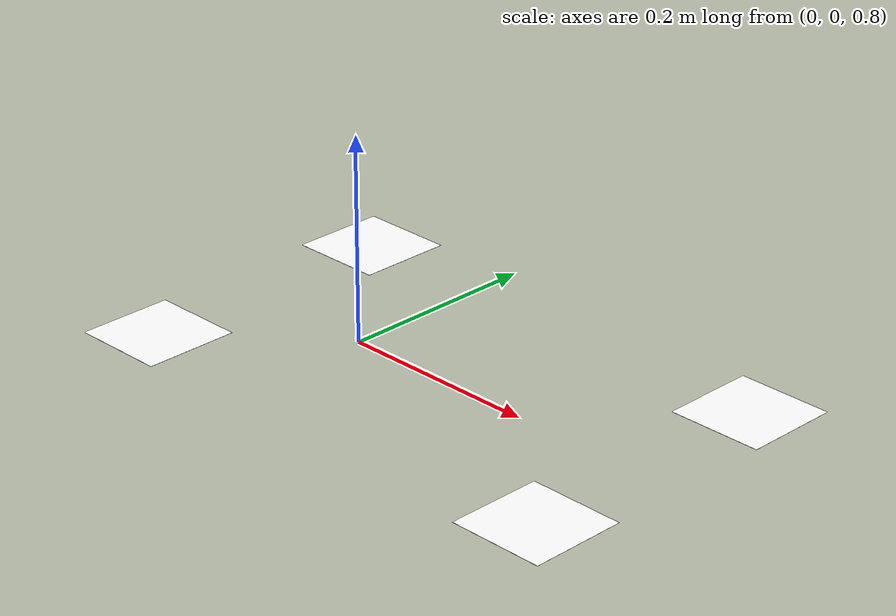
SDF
<sdf version="1.10">
 <world name="waste_sorting_cell">
  <gravity>0 0 -9.81</gravity>
  <physics name="default_physics" type="ignored">
   <max_step_size>0.001</max_step_size>
   <real_time_factor>1.0</real_time_factor>
   <real_time_update_rate>1000</real_time_update_rate>
  </physics>
  <plugin filename="gz-sim-physics-system" name="gz::sim::systems::Physics">
   <engine><filename>gz-physics-bullet-featherstone-plugin</filename></engine>
  </plugin>
  <plugin filename="gz-sim-user-commands-system" name="gz::sim::systems::UserCommands"/>
  <plugin filename="gz-sim-scene-broadcaster-system" name="gz::sim::systems::SceneBroadcaster"/>
  <plugin filename="gz-sim-sensors-system" name="gz::sim::systems::Sensors">
   <render_engine>ogre2</render_engine>
  </plugin>
  <model name="ground">
   <static>true</static>
   <link name="ground_link"><collision name="collision"/></link>
  </model>
  <include><name>aruco_tag_1</name><uri>model://arucotag</uri><pose>0.25 -0.03 0.73 0 0 0</pose></include>
  <include><name>aruco_tag_2</name><uri>model://arucotag</uri><pose>-0.25 -0.03 0.73 0 0 0</pose></include>
  <include><name>aruco_tag_3</name><uri>model://arucotag</uri><pose>-0.25 0.25 0.73 0 0 0</pose></include>
  <include><name>aruco_tag_4</name><uri>model://arucotag</uri><pose>0.25 0.25 0.73 0 0 0</pose></include>
  <model name="overhead_camera">
   <static>true</static>
   <pose>0.0 0.0 1.5
        0.0 1.57079632679 0.0</pose>
   <link name="camera_link">
    <sensor name="sorting_camera" type="camera">
     <always_on>1</always_on>
     <update_rate>30</update_rate>
     <visualize>true</visualize>
     <topic>/sorting_camera/image</topic>
     <camera>
      <horizontal_fov>1.047</horizontal_fov>
      <image><width>640</width><height>480</height><format>R8G8B8</format></image>
      <clip><near>0.05</near><far>5.0</far></clip>
     </camera>
    </sensor>
   </link>
  </model>
  <light name="sun" type="directional">
   <direction>-0.4 -0.3 -1.0</direction>
   <diffuse>0.8 0.8 0.8 1</diffuse>
   <specular>0.2 0.2 0.2 1</specular>
  </light>
 </world>
</sdf>

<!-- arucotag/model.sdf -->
<sdf version='1.9'>
  <model name='arucotag'>
    <static>true</static>
    <pose>0 0 0.001 0 0 0</pose>
    <link name='base'>
      <visual name='base_visual'>
        <geometry>
          <plane>
            <normal>0 0 1</normal>
            <size>0.1 0.1</size>
          </plane>
          <scale>0.5 0.5 0.5</scale>
        </geometry>
        <material>
          <diffuse>1 1 1 1</diffuse>
          <specular>0.4 0.4 0.4 1</specular>
          <pbr>
            <metal>
              <albedo_map>model://arucotag/arucotag.png</albedo_map>
            </metal>
          </pbr>
        </material>
      </visual>
    </link>
  </model>
</sdf>
